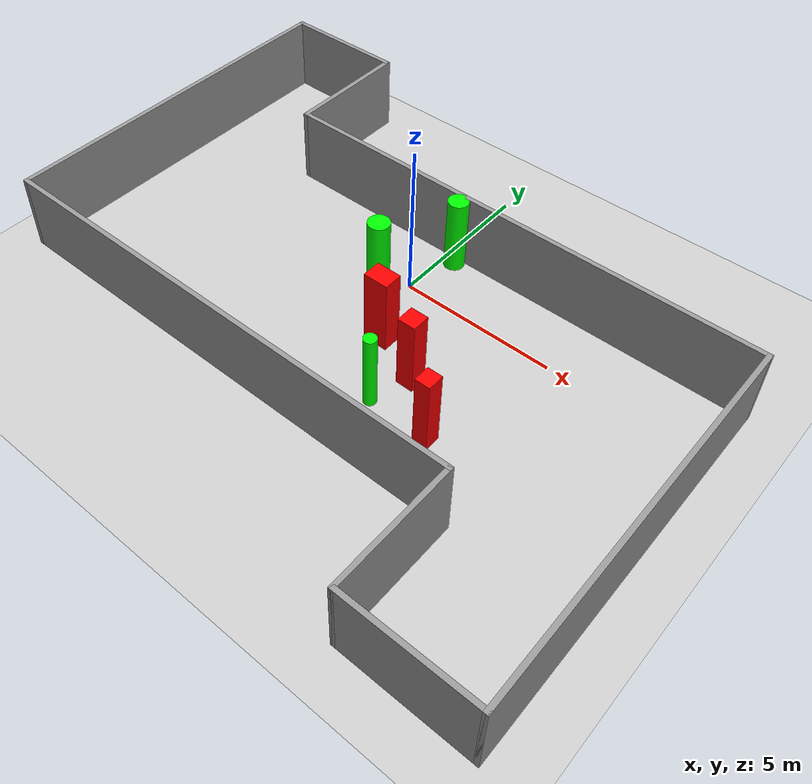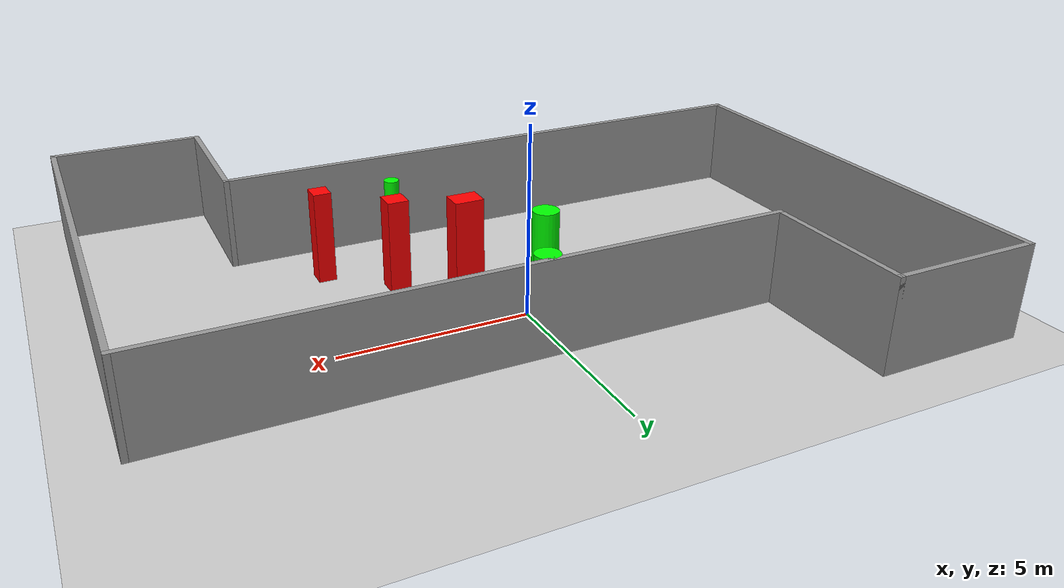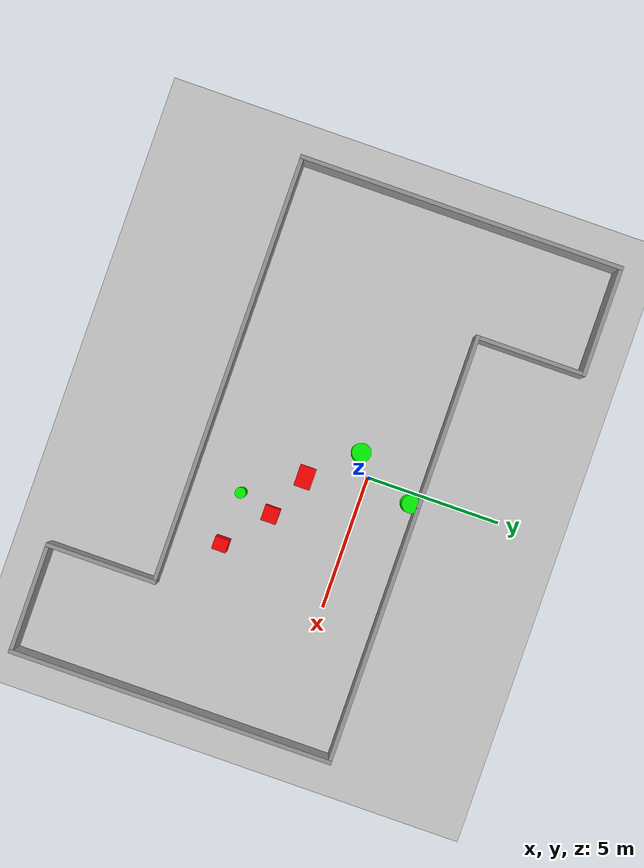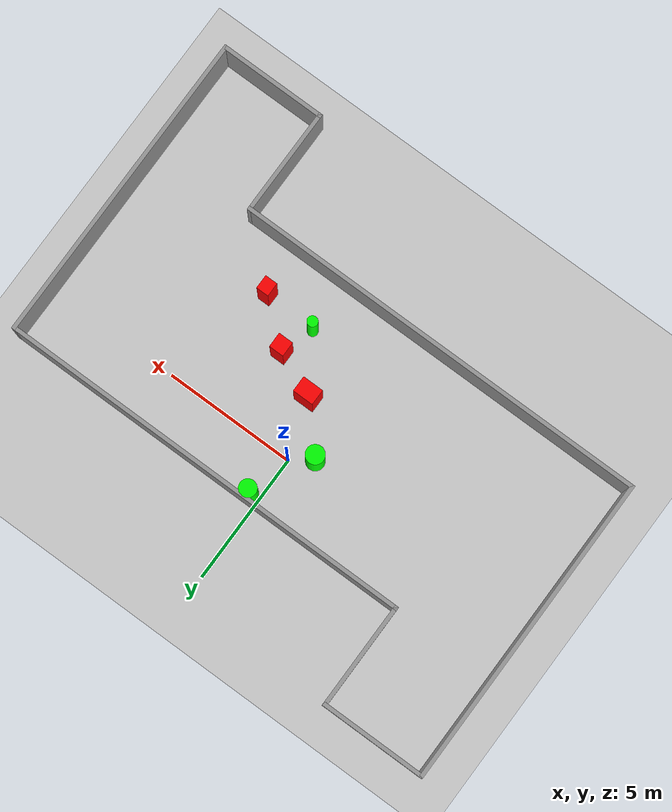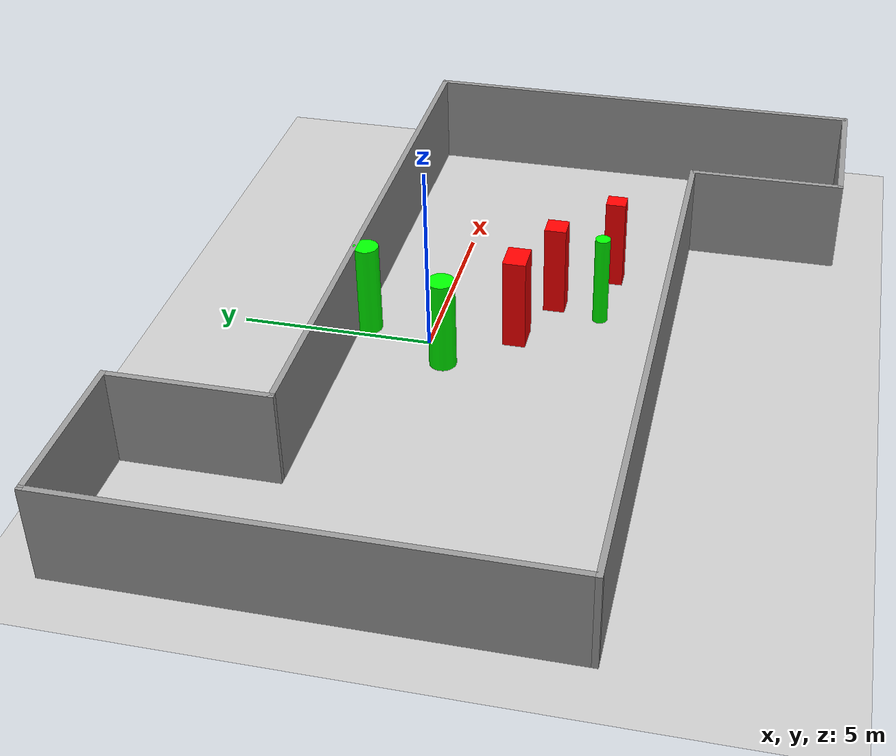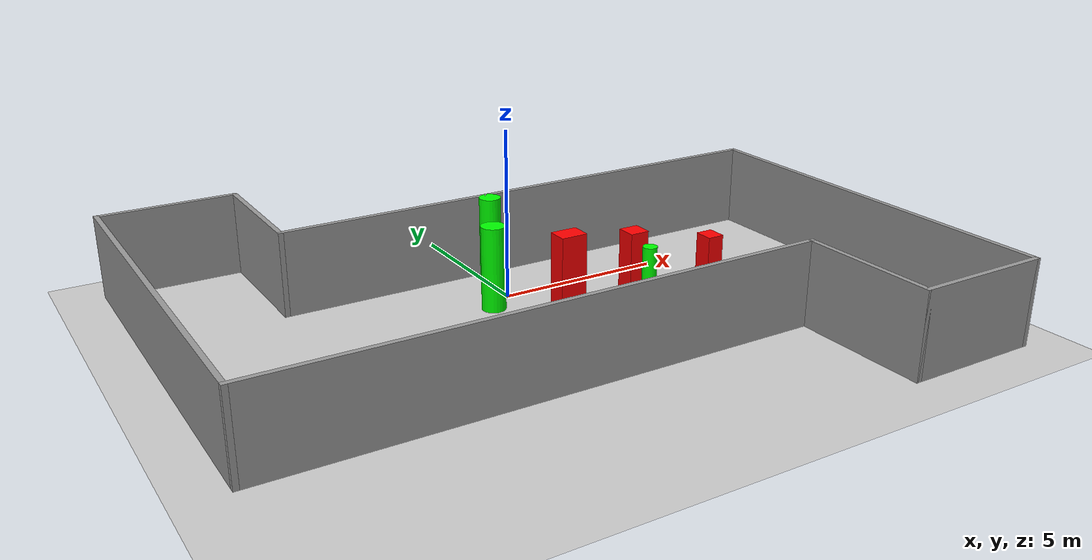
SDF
<sdf version="1.7">
 <world name="default">
  <light name="sun" type="directional">
   <pose>0 0 10 0 -0 0</pose>
   <diffuse>0.8 0.8 0.8 1</diffuse>
   <specular>0.2 0.2 0.2 1</specular>
   <attenuation>
    <range>1000</range>
    <constant>0.9</constant>
    <linear>0.01</linear>
    <quadratic>0.001</quadratic>
   </attenuation>
   <direction>-0.5 0.1 -0.9</direction>
   <spot><inner_angle>0</inner_angle><outer_angle>0</outer_angle><falloff>0</falloff></spot>
  </light>
  <model name="ground_plane">
   <static>1</static>
   <link name="link">
    <collision name="collision">
     <geometry><plane><normal>0 0 1</normal><size>100 100</size></plane></geometry>
     <surface>
      <contact><collide_bitmask>65535</collide_bitmask></contact>
      <friction><ode><mu>100</mu><mu2>50</mu2></ode></friction>
     </surface>
    </collision>
    <visual name="visual">
     <cast_shadows>0</cast_shadows>
     <geometry><plane><normal>0 0 1</normal><size>100 100</size></plane></geometry>
     <material>
      <script><uri>file://media/materials/scripts/gazebo.material</uri><name>Gazebo/Grey</name></script>
     </material>
    </visual>
   </link>
  </model>
  <gravity>0 0 -9.8</gravity>
  <magnetic_field>6e-06 2.3e-05 -4.2e-05</magnetic_field>
  <atmosphere type="adiabatic"/>
  <physics type="ode">
   <max_step_size>0.001</max_step_size>
   <real_time_factor>1</real_time_factor>
   <real_time_update_rate>1000</real_time_update_rate>
  </physics>
  <scene><ambient>0.4 0.4 0.4 1</ambient><background>0.7 0.7 0.7 1</background><shadows>1</shadows></scene>
  <spherical_coordinates>
   <surface_model>EARTH_WGS84</surface_model>
   <latitude_deg>0</latitude_deg>
   <longitude_deg>0</longitude_deg>
   <elevation>0</elevation>
   <heading_deg>0</heading_deg>
  </spherical_coordinates>
  <model name="my_base_walls">
   <link name="Wall_13">
    <collision name="Wall_13_Collision">
     <geometry><box><size>12.15 0.15 2.5</size></box></geometry>
     <pose>0 0 1.25 0 -0 0</pose>
    </collision>
    <visual name="Wall_13_Visual">
     <pose>0 0 1.25 0 -0 0</pose>
     <geometry><box><size>12.15 0.15 2.5</size></box></geometry>
     <material>
      <script><uri>file://media/materials/scripts/gazebo.material</uri><name>Gazebo/Grey</name></script>
      <ambient>1 1 1 1</ambient>
     </material>
     <meta><layer>0</layer></meta>
    </visual>
    <pose>10 -2 0 0 -0 1.5708</pose>
   </link>
   <link name="Wall_15">
    <collision name="Wall_15_Collision">
     <geometry><box><size>16.15 0.15 2.5</size></box></geometry>
     <pose>0 0 1.25 0 -0 0</pose>
    </collision>
    <visual name="Wall_15_Visual">
     <pose>0 0 1.25 0 -0 0</pose>
     <geometry><box><size>16.15 0.15 2.5</size></box></geometry>
     <material>
      <script><uri>file://media/materials/scripts/gazebo.material</uri><name>Gazebo/Grey</name></script>
      <ambient>1 1 1 1</ambient>
     </material>
     <meta><layer>0</layer></meta>
    </visual>
    <pose>2 4 0 0 -0 3.14159</pose>
   </link>
   <link name="Wall_17">
    <collision name="Wall_17_Collision">
     <geometry><box><size>4.15 0.15 2.5</size></box></geometry>
     <pose>0 0 1.25 0 -0 0</pose>
    </collision>
    <visual name="Wall_17_Visual">
     <pose>0 0 1.25 0 -0 0</pose>
     <geometry><box><size>4.15 0.15 2.5</size></box></geometry>
     <material>
      <script><uri>file://media/materials/scripts/gazebo.material</uri><name>Gazebo/Grey</name></script>
      <ambient>1 1 1 1</ambient>
     </material>
     <meta><layer>0</layer></meta>
    </visual>
    <pose>6 -6 0 0 -0 -1.5708</pose>
   </link>
   <link name="Wall_19">
    <collision name="Wall_19_Collision">
     <geometry><box><size>12.15 0.15 2.5</size></box></geometry>
     <pose>0 0 1.25 0 -0 0</pose>
    </collision>
    <visual name="Wall_19_Visual">
     <pose>0 0 1.25 0 -0 0</pose>
     <geometry><box><size>12.15 0.15 2.5</size></box></geometry>
     <material>
      <script><uri>file://media/materials/scripts/gazebo.material</uri><name>Gazebo/Grey</name></script>
      <ambient>1 1 1 1</ambient>
     </material>
     <meta><layer>0</layer></meta>
    </visual>
    <pose>-10 2 0 0 -0 1.5708</pose>
   </link>
   <link name="Wall_21">
    <collision name="Wall_21_Collision">
     <geometry><box><size>4.15 0.15 2.5</size></box></geometry>
     <pose>0 0 1.25 0 -0 0</pose>
    </collision>
    <visual name="Wall_21_Visual">
     <pose>0 0 1.25 0 -0 0</pose>
     <geometry><box><size>4.15 0.15 2.5</size></box></geometry>
     <material>
      <script><uri>file://media/materials/scripts/gazebo.material</uri><name>Gazebo/Grey</name></script>
      <ambient>1 1 1 1</ambient>
     </material>
     <meta><layer>0</layer></meta>
    </visual>
    <pose>-8 8 0 0 -0 0</pose>
   </link>
   <link name="Wall_23">
    <collision name="Wall_23_Collision">
     <geometry><box><size>4.15 0.15 2.5</size></box></geometry>
     <pose>0 0 1.25 0 -0 0</pose>
    </collision>
    <visual name="Wall_23_Visual">
     <pose>0 0 1.25 0 -0 0</pose>
     <geometry><box><size>4.15 0.15 2.5</size></box></geometry>
     <material>
      <script><uri>file://media/materials/scripts/gazebo.material</uri><name>Gazebo/Grey</name></script>
      <ambient>1 1 1 1</ambient>
     </material>
     <meta><layer>0</layer></meta>
    </visual>
    <pose>-6 6 0 0 -0 -1.5708</pose>
   </link>
   <link name="Wall_25">
    <collision name="Wall_25_Collision">
     <geometry><box><size>4.15 0.15 2.5</size></box></geometry>
     <pose>0 0 1.25 0 -0 0</pose>
    </collision>
    <visual name="Wall_25_Visual">
     <pose>0 0 1.25 0 -0 0</pose>
     <geometry><box><size>4.15 0.15 2.5</size></box></geometry>
     <material>
      <script><uri>file://media/materials/scripts/gazebo.material</uri><name>Gazebo/Grey</name></script>
      <ambient>1 1 1 1</ambient>
     </material>
     <meta><layer>0</layer></meta>
    </visual>
    <pose>8 -8 0 0 -0 0</pose>
   </link>
   <link name="Wall_9">
    <collision name="Wall_9_Collision">
     <geometry><box><size>16.15 0.15 2.5</size></box></geometry>
     <pose>0 0 1.25 0 -0 0</pose>
    </collision>
    <visual name="Wall_9_Visual">
     <pose>0 0 1.25 0 -0 0</pose>
     <geometry><box><size>16.15 0.15 2.5</size></box></geometry>
     <material>
      <script><uri>file://media/materials/scripts/gazebo.material</uri><name>Gazebo/Grey</name></script>
      <ambient>1 1 1 1</ambient>
     </material>
     <meta><layer>0</layer></meta>
    </visual>
    <pose>-2 -4 0 0 -0 3.14159</pose>
   </link>
   <static>1</static>
   <pose>-0 -2 0 0 -0 0</pose>
  </model>
  <model name="cylinder1">
   <static>1</static>
   <link name="link">
    <inertial>
     <mass>1</mass>
     <inertia><ixx>0.5</ixx><ixy>0</ixy><ixz>0</ixz><iyy>0.5</iyy><iyz>0</iyz><izz>1</izz></inertia>
    </inertial>
    <collision name="collision">
     <geometry><cylinder><radius>0.32694104504178334</radius><length>2.5</length></cylinder></geometry>
    </collision>
    <visual name="visual">
     <geometry><cylinder><radius>0.32694104504178334</radius><length>2.5</length></cylinder></geometry>
     <material>
      <ambient>0 1 0 1</ambient>
      <diffuse>0 1 0 1</diffuse>
      <specular>0.1 0.1 0.1 1</specular>
      <emissive>0 0 0 0</emissive>
     </material>
    </visual>
   </link>
   <pose>0.38578527647112804 1.7035093289994458 1.25 0 0 0</pose>
  </model>
  <model name="cylinder2">
   <static>1</static>
   <link name="link">
    <inertial>
     <mass>1</mass>
     <inertia><ixx>0.5</ixx><ixy>0</ixy><ixz>0</ixz><iyy>0.5</iyy><iyz>0</iyz><izz>1</izz></inertia>
    </inertial>
    <collision name="collision">
     <geometry><cylinder><radius>0.35017801963596834</radius><length>2.5</length></cylinder></geometry>
    </collision>
    <visual name="visual">
     <geometry><cylinder><radius>0.35017801963596834</radius><length>2.5</length></cylinder></geometry>
     <material>
      <ambient>0 1 0 1</ambient>
      <diffuse>0 1 0 1</diffuse>
      <specular>0.1 0.1 0.1 1</specular>
      <emissive>0 0 0 0</emissive>
     </material>
    </visual>
   </link>
   <pose>-0.7673214943074864 -0.5544860254059829 1.25 0 0 0</pose>
  </model>
  <model name="cylinder3">
   <static>1</static>
   <link name="link">
    <inertial>
     <mass>1</mass>
     <inertia><ixx>0.5</ixx><ixy>0</ixy><ixz>0</ixz><iyy>0.5</iyy><iyz>0</iyz><izz>1</izz></inertia>
    </inertial>
    <collision name="collision">
     <geometry><cylinder><radius>0.19963924012730858</radius><length>2.5</length></cylinder></geometry>
    </collision>
    <visual name="visual">
     <geometry><cylinder><radius>0.19963924012730858</radius><length>2.5</length></cylinder></geometry>
     <material>
      <ambient>0 1 0 1</ambient>
      <diffuse>0 1 0 1</diffuse>
      <specular>0.1 0.1 0.1 1</specular>
      <emissive>0 0 0 0</emissive>
     </material>
    </visual>
   </link>
   <pose>1.9944364698669972 -4.146823068344644 1.25 0 0 0</pose>
  </model>
  <model name="box1">
   <static>1</static>
   <link name="link">
    <inertial>
     <mass>1</mass>
     <inertia><ixx>0.083</ixx><ixy>0</ixy><ixz>0</ixz><iyy>0.083</iyy><iyz>0</iyz><izz>0.083</izz></inertia>
    </inertial>
    <collision name="collision">
     <geometry><box><size>0.564149354630558 0.5644755576704126 2.5</size></box></geometry>
    </collision>
    <visual name="visual">
     <geometry><box><size>0.564149354630558 0.5644755576704126 2.5</size></box></geometry>
     <material>
      <ambient>1 0 0 1</ambient>
      <diffuse>1 0 0 1</diffuse>
      <specular>0.1 0.1 0.1 1</specular>
      <emissive>0 0 0 0</emissive>
     </material>
    </visual>
    <sensor name="my_contact" type="contact">
     <contact><collision>box_collision</collision><topic>__default_topic__</topic></contact>
    </sensor>
   </link>
   <pose>2.3804929720927177 -2.879209801929421 1.25 0 0 0</pose>
  </model>
  <model name="box2">
   <static>1</static>
   <link name="link">
    <inertial>
     <mass>1</mass>
     <inertia><ixx>0.083</ixx><ixy>0</ixy><ixz>0</ixz><iyy>0.083</iyy><iyz>0</iyz><izz>0.083</izz></inertia>
    </inertial>
    <collision name="collision">
     <geometry><box><size>0.7931943978946223 0.5982051029688611 2.5</size></box></geometry>
    </collision>
    <visual name="visual">
     <geometry><box><size>0.7931943978946223 0.5982051029688611 2.5</size></box></geometry>
     <material>
      <ambient>1 0 0 1</ambient>
      <diffuse>1 0 0 1</diffuse>
      <specular>0.1 0.1 0.1 1</specular>
      <emissive>0 0 0 0</emissive>
     </material>
    </visual>
    <sensor name="my_contact" type="contact">
     <contact><collision>box_collision</collision><topic>__default_topic__</topic></contact>
    </sensor>
   </link>
   <pose>0.7194413213411952 -2.1573339734724684 1.25 0 0 0</pose>
  </model>
  <model name="box3">
   <static>1</static>
   <link name="link">
    <inertial>
     <mass>1</mass>
     <inertia><ixx>0.083</ixx><ixy>0</ixy><ixz>0</ixz><iyy>0.083</iyy><iyz>0</iyz><izz>0.083</izz></inertia>
    </inertial>
    <collision name="collision">
     <geometry><box><size>0.47488483758395583 0.5245440568306633 2.5</size></box></geometry>
    </collision>
    <visual name="visual">
     <geometry><box><size>0.47488483758395583 0.5245440568306633 2.5</size></box></geometry>
     <material>
      <ambient>1 0 0 1</ambient>
      <diffuse>1 0 0 1</diffuse>
      <specular>0.1 0.1 0.1 1</specular>
      <emissive>0 0 0 0</emissive>
     </material>
    </visual>
    <sensor name="my_contact" type="contact">
     <contact><collision>box_collision</collision><topic>__default_topic__</topic></contact>
    </sensor>
   </link>
   <pose>3.9631970616554923 -4.209871478671617 1.25 0 0 0</pose>
  </model>
 </world>
</sdf>
